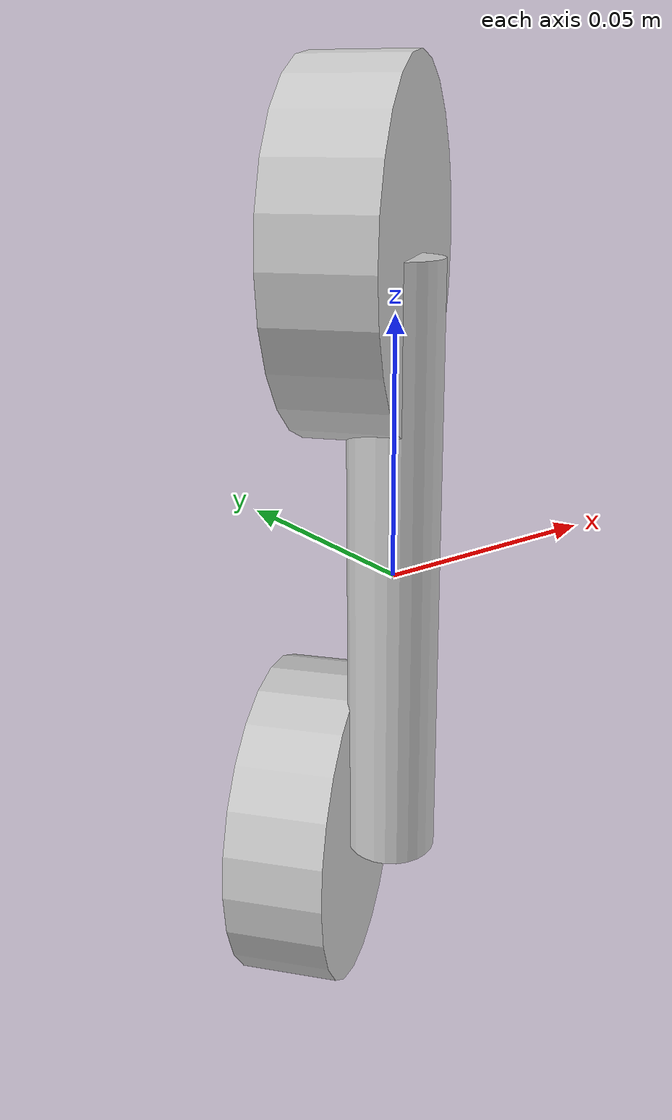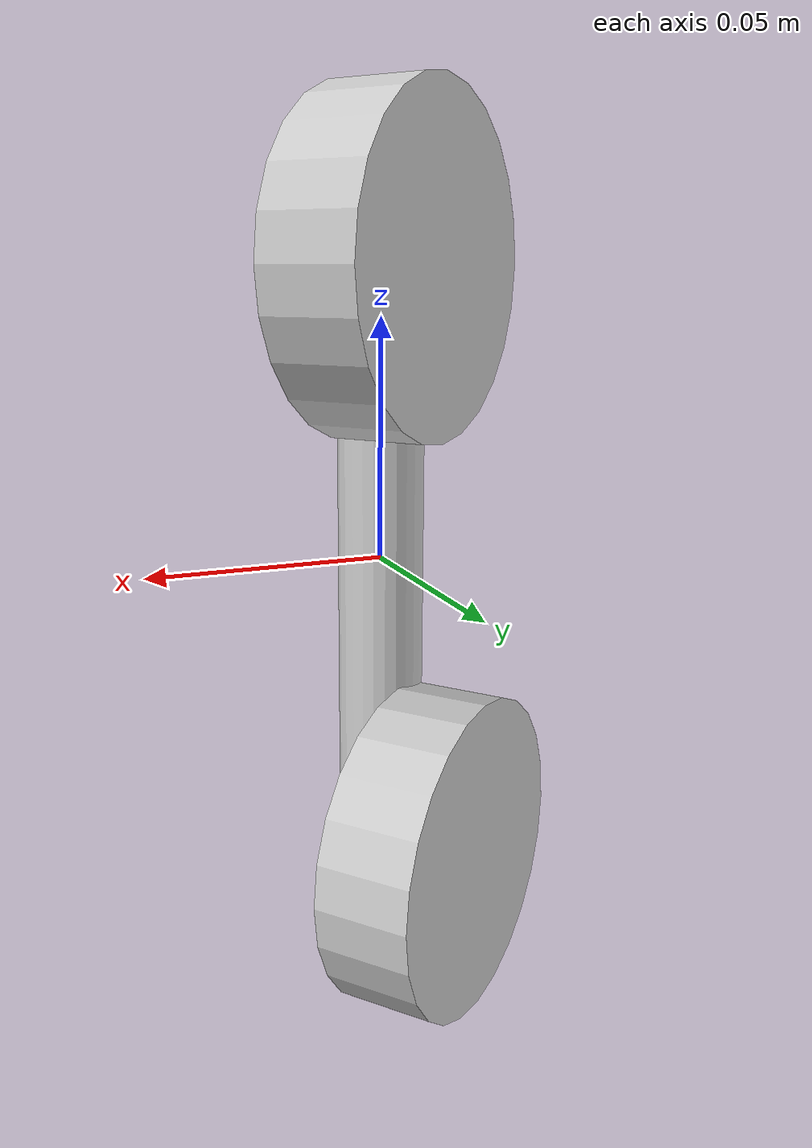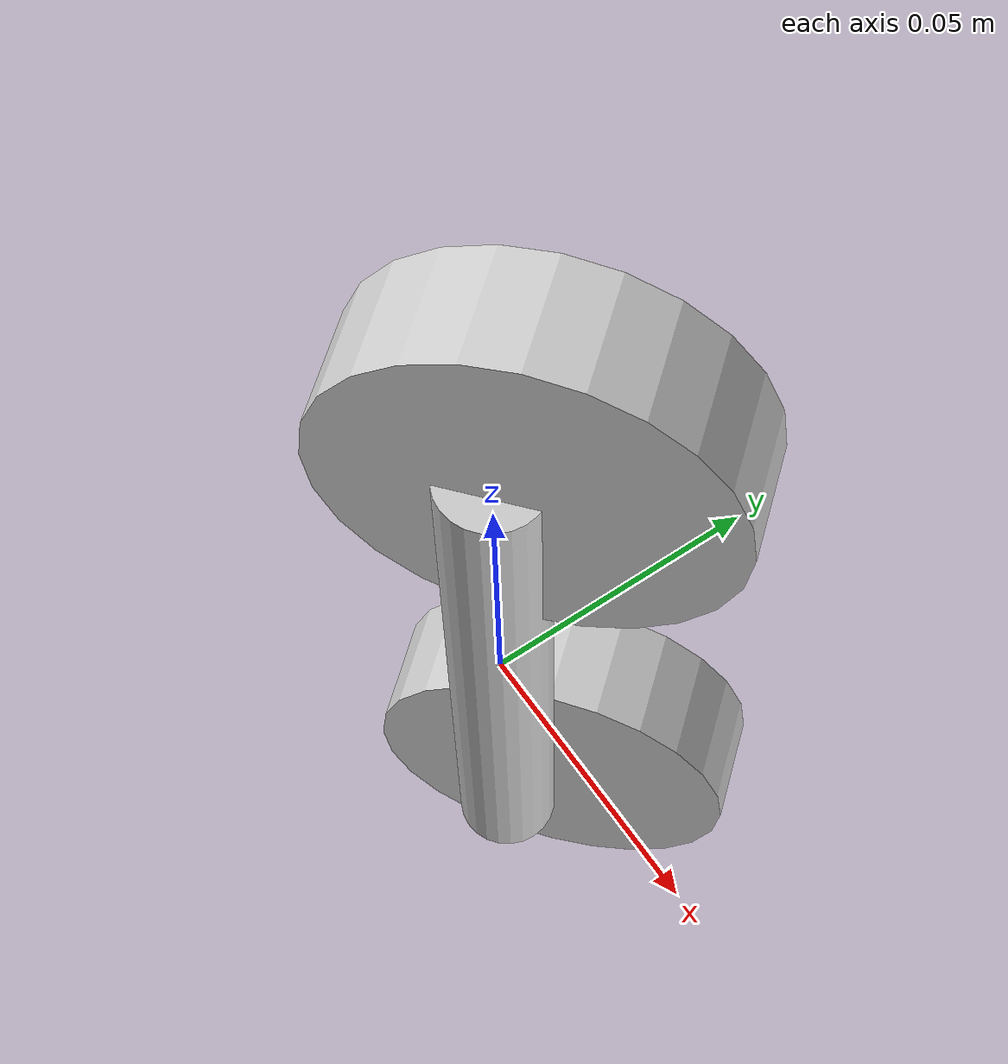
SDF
<?xml version="1.0"?>
<sdf version="1.7">
  <model name="wheelsActuatorRight">

    <!-- INCLUDE ACTUATOR LINK -->
    <!-- Así hay un link actuator genérico que no depende de lo que haya después -->
    <link name="aLink">
      <pose>0 0 0 0 0 0</pose>
    </link>

    <!-- INCLUDE ACTUATOR BASE -->
    <link name="abLink">
      <pose relative_to="j_a_ab">0 0 0 0 0 0</pose>
      <inertial>
        <mass>0.2</mass>
        <inertia>
          <ixx>0.064</ixx>
          <ixy>0</ixy>
          <ixz>0</ixz>
          <iyy>0.064</iyy>
          <iyz>0</iyz>
          <izz>0.00024</izz>
        </inertia>
      </inertial>
      <collision name='collision'>
        <geometry>
          <cylinder>
            <radius>0.009</radius> <!--Rab-->
            <length>0.120</length> <!--Lab-->
          </cylinder>
        </geometry>
      </collision>
      <visual name='visual'>
        <transparency>0.1</transparency>
        <geometry>
          <cylinder>
            <radius>0.009</radius> <!--Rab-->
            <length>0.120</length> <!--Lab-->
          </cylinder>
        </geometry>
          <material>
            <ambient>0.8 0.8 0.8 1</ambient>
            <diffuse>0.8 0.8 0.8 1</diffuse>
            <specular>0.8 0.8 0.8 1</specular>
          </material>
      </visual>
    </link>

    <!-- JOINT ACTUATOR - ACTUATOR BASE -->
    <joint name="j_a_ab" type="fixed">
      <pose relative_to="aLink">0 0 0 0 0 0</pose>
      <parent>aLink</parent>
      <child>abLink</child>
    </joint>

    <!-- INCLUDE FRONT WHEEL -->
    <link name="fwLink">
      <!--La posición del centro de masas de la rueda delantera está a a la mitad del ancho de la rueda en sentido positivo al eje fwZ desde la unión de la base del actuador y la rueda: Wfw/2=0.01/2=0.005-->
      <pose relative_to="j_ab_fw">0 0 0.01 0 0 0</pose>
      <inertial>
        <mass>0.2</mass>
        <inertia>
          <ixx>0.064</ixx>
          <ixy>0</ixy>
          <ixz>0</ixz>
          <iyy>0.064</iyy>
          <iyz>0</iyz>
          <izz>0.00024</izz>
        </inertia>
      </inertial>
      <collision name='collision'>
        <geometry>
          <cylinder>
            <radius>0.034</radius>
            <length>0.020</length>
          </cylinder>
        </geometry>
      </collision>
      <visual name='visual'>
        <pose relative_to="j_ab_fw">0 0 0 0 0 1.5708</pose>
        <transparency>0.1</transparency>
        <geometry>
          <cylinder>
            <radius>0.034</radius> <!--Rfw-->
            <length>0.020</length> <!--Wfw-->
          </cylinder>
        </geometry>
          <material>
            <ambient>0.8 0.8 0.8 1</ambient>
            <diffuse>0.8 0.8 0.8 1</diffuse>
            <specular>0.8 0.8 0.8 1</specular>
          </material>
      </visual>
    </link>

    <!-- JOINT ACTUATOR BASE - FRONT WHEEL -->
    <joint name="j_ab_fw" type="revolute">
      <pose relative_to="abLink">0 0.009 0.060 -1.5708 0 0.698132</pose>
      <parent>abLink</parent>
      <child>fwLink</child>
      <axis>
        <!--El eje de giro de la rueda está en el eje fwZ en sentido negativo-->
        <xyz>0 0 -1</xyz>
      </axis>
    </joint>

    <!-- INCLUDE BACK WHEEL -->
    <link name="bwLink">
      <!--La posición del centro de masas de la rueda trasera está a a la mitad del ancho de la rueda en sentido positivo al eje bwZ desde la unión de la base del actuador y la rueda: Wbw/2=0.01/2=0.005-->
      <pose relative_to="j_ab_bw">0 0 0.01 0 0 0</pose>
      <inertial>
        <mass>0.2</mass>
        <inertia>
          <ixx>0.064</ixx>
          <ixy>0</ixy>
          <ixz>0</ixz>
          <iyy>0.064</iyy>
          <iyz>0</iyz>
          <izz>0.00024</izz>
        </inertia>
      </inertial>
      <collision name='collision'>
        <geometry>
          <cylinder>
            <radius>0.034</radius>
            <length>0.020</length>
          </cylinder>
        </geometry>
      </collision>
      <visual name='visual'>
        <transparency>0.1</transparency>
        <geometry>
          <cylinder>
            <radius>0.034</radius><!--Rbw-->
            <length>0.020</length><!--Wbw-->
          </cylinder>
        </geometry>
          <material>
            <ambient>0.8 0.8 0.8 1</ambient>
            <diffuse>0.8 0.8 0.8 1</diffuse>
            <specular>0.8 0.8 0.8 1</specular>
          </material>
      </visual>
    </link>

    <!-- JOINT ACTUATOR BASE - BACK WHEEL -->
    <joint name="j_ab_bw" type="revolute">
      <pose relative_to="abLink">0 0.01 -0.060 -1.5708 0 0.698132</pose>
      <parent>abLink</parent>
      <child>bwLink</child>
      <axis>
        <!--El eje de giro de la rueda está en el eje bwZ en sentido negativo-->
        <xyz>0 0 -1</xyz>
      </axis>
    </joint>

  </model>
</sdf>
